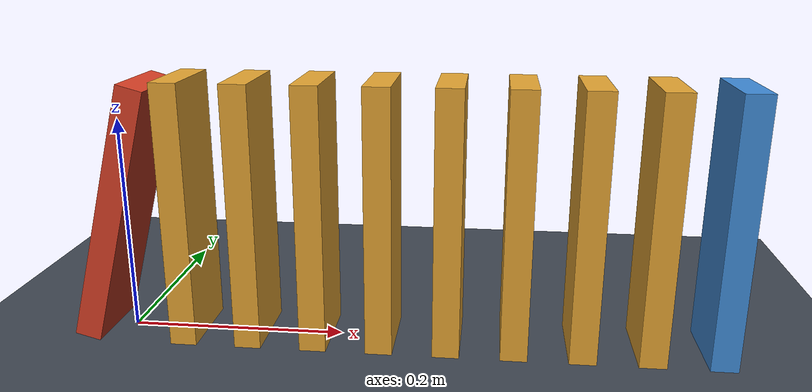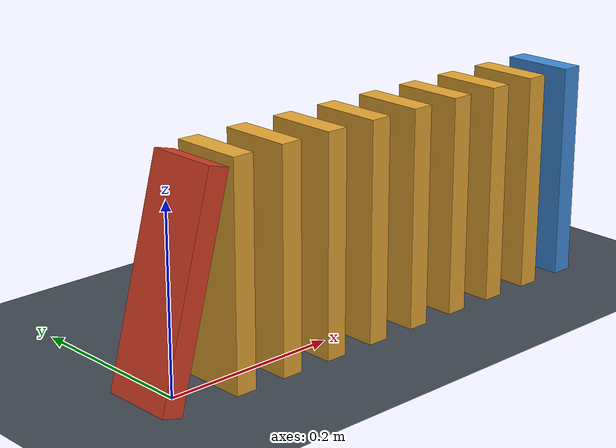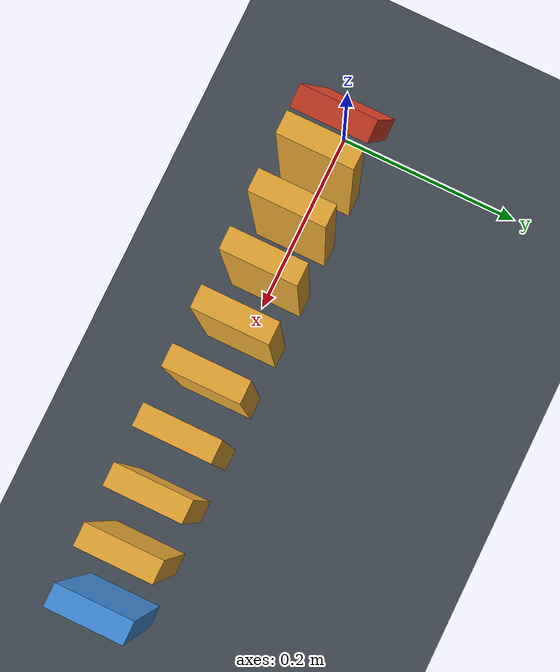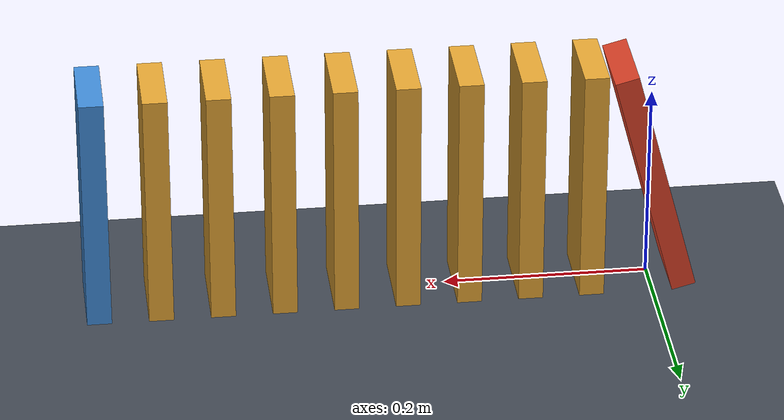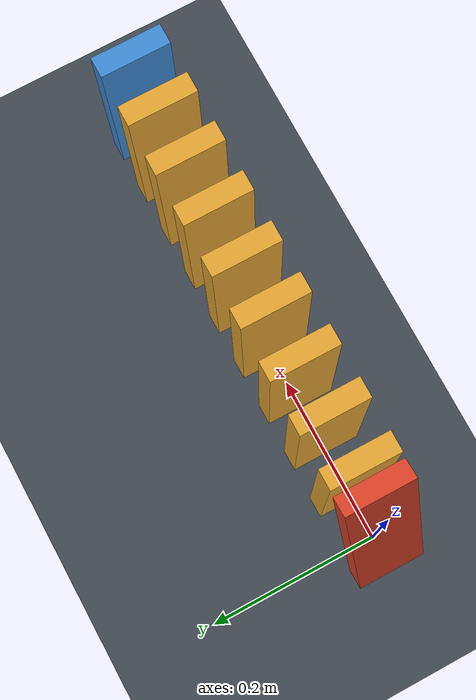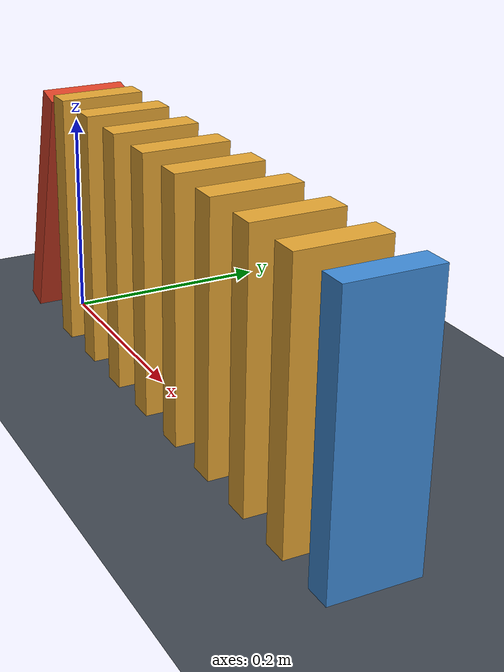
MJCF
<mujoco model="ten_domino_chain">
  <compiler angle="radian"/>
  <option timestep="0.002" gravity="0 0 -9.81" integrator="implicitfast" solver="Newton" iterations="100" cone="elliptic"/>

  <visual>
    <headlight ambient="0.4 0.4 0.4" diffuse="0.7 0.7 0.7" specular="0.2 0.2 0.2"/>
  </visual>

  <worldbody>
    <light name="overhead" pos="0.3 -0.5 1.8" dir="0 0 -1"/>
    <camera name="overview" pos="0.3 -1.2 0.8" xyaxes="1 0 0 0 0.5 0.8660254"/>

    <geom name="floor" type="plane" pos="0 0 0" size="2 2 0.1" friction="0.8 0.005 0.0001" solref="0.008 1" solimp="0.95 0.99 0.001" rgba="0.25 0.28 0.32 1"/>

    <body name="domino1" pos="0 0 0.119016928" quat="0.9914448614 0 0.1305261922 0">
      <freejoint name="domino1_free"/>
      <geom name="domino1_geom" type="box" size="0.012 0.04 0.12" mass="0.12" friction="0.8 0.005 0.0001" solref="0.008 1" solimp="0.95 0.99 0.001" rgba="0.85 0.25 0.15 1"/>
    </body>

    <body name="domino2" pos="0.06 0 0.12">
      <freejoint name="domino2_free"/>
      <geom name="domino2_geom" type="box" size="0.012 0.04 0.12" mass="0.12" friction="0.8 0.005 0.0001" solref="0.008 1" solimp="0.95 0.99 0.001" rgba="0.9 0.65 0.2 1"/>
    </body>

    <body name="domino3" pos="0.12 0 0.12">
      <freejoint name="domino3_free"/>
      <geom name="domino3_geom" type="box" size="0.012 0.04 0.12" mass="0.12" friction="0.8 0.005 0.0001" solref="0.008 1" solimp="0.95 0.99 0.001" rgba="0.9 0.65 0.2 1"/>
    </body>

    <body name="domino4" pos="0.18 0 0.12">
      <freejoint name="domino4_free"/>
      <geom name="domino4_geom" type="box" size="0.012 0.04 0.12" mass="0.12" friction="0.8 0.005 0.0001" solref="0.008 1" solimp="0.95 0.99 0.001" rgba="0.9 0.65 0.2 1"/>
    </body>

    <body name="domino5" pos="0.24 0 0.12">
      <freejoint name="domino5_free"/>
      <geom name="domino5_geom" type="box" size="0.012 0.04 0.12" mass="0.12" friction="0.8 0.005 0.0001" solref="0.008 1" solimp="0.95 0.99 0.001" rgba="0.9 0.65 0.2 1"/>
    </body>

    <body name="domino6" pos="0.30 0 0.12">
      <freejoint name="domino6_free"/>
      <geom name="domino6_geom" type="box" size="0.012 0.04 0.12" mass="0.12" friction="0.8 0.005 0.0001" solref="0.008 1" solimp="0.95 0.99 0.001" rgba="0.9 0.65 0.2 1"/>
    </body>

    <body name="domino7" pos="0.36 0 0.12">
      <freejoint name="domino7_free"/>
      <geom name="domino7_geom" type="box" size="0.012 0.04 0.12" mass="0.12" friction="0.8 0.005 0.0001" solref="0.008 1" solimp="0.95 0.99 0.001" rgba="0.9 0.65 0.2 1"/>
    </body>

    <body name="domino8" pos="0.42 0 0.12">
      <freejoint name="domino8_free"/>
      <geom name="domino8_geom" type="box" size="0.012 0.04 0.12" mass="0.12" friction="0.8 0.005 0.0001" solref="0.008 1" solimp="0.95 0.99 0.001" rgba="0.9 0.65 0.2 1"/>
    </body>

    <body name="domino9" pos="0.48 0 0.12">
      <freejoint name="domino9_free"/>
      <geom name="domino9_geom" type="box" size="0.012 0.04 0.12" mass="0.12" friction="0.8 0.005 0.0001" solref="0.008 1" solimp="0.95 0.99 0.001" rgba="0.9 0.65 0.2 1"/>
    </body>

    <body name="domino10" pos="0.54 0 0.12">
      <freejoint name="domino10_free"/>
      <geom name="domino10_geom" type="box" size="0.012 0.04 0.12" mass="0.12" friction="0.8 0.005 0.0001" solref="0.008 1" solimp="0.95 0.99 0.001" rgba="0.25 0.55 0.85 1"/>
    </body>
  </worldbody>

  <keyframe>
    <!-- Positions default to the body poses above. Each velocity group has six entries. -->
    <key name="start" qvel="0.238034 0 -0.038934 0 2 0   0 0 0 0 0 0   0 0 0 0 0 0   0 0 0 0 0 0   0 0 0 0 0 0   0 0 0 0 0 0   0 0 0 0 0 0   0 0 0 0 0 0   0 0 0 0 0 0   0 0 0 0 0 0"/>
  </keyframe>
</mujoco>
